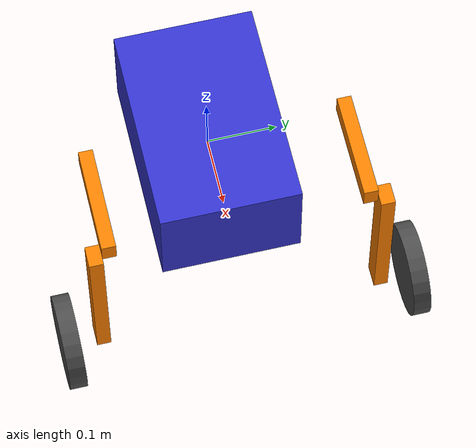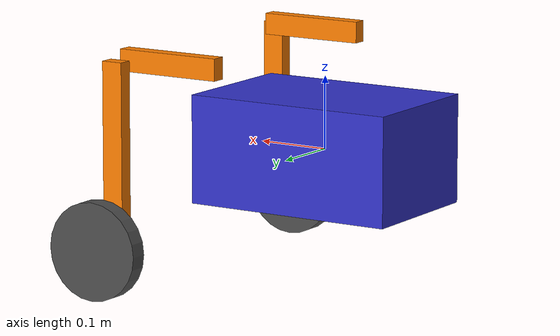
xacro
<?xml version="1.0" encoding="utf-8"?>
<robot name="wheel_legged_robot_base" xmlns:xacro="http://www.ros.org/wiki/xacro">

  <!-- 基于原始URDF的简化版本，适配Gazebo -->

  <link name="base_link">
    <inertial>
      <origin xyz="-0.0076 0.0067 0.123056" rpy="0 0 0" />
      <mass value="8.8" />
      <inertia ixx="0.326092" ixy="3.6E-05" ixz="-0.00115" iyy="0.229526" iyz="0.006798" izz="0.220537" />
    </inertial>
    <visual>
      <origin xyz="0 0 0" rpy="0 0 0" />
      <geometry>
        <box size="0.3 0.2 0.15"/>
      </geometry>
      <material name="blue">
        <color rgba="0.2 0.2 0.8 1" />
      </material>
    </visual>
    <collision>
      <origin xyz="0 0 0" rpy="0 0 0" />
      <geometry>
        <box size="0.3 0.2 0.15"/>
      </geometry>
    </collision>
  </link>

  <!-- 左前腿第一关节 -->
  <link name="lf0_Link">
    <inertial>
      <origin xyz="0.05976637 -0.00048182 0.01198236" rpy="0 0 0" />
      <mass value="0.16" />
      <inertia ixx="0.00006424" ixy="0.00000030" ixz="0.00012472" iyy="0.00116066" iyz="-0.00000101" izz="0.00117029" />
    </inertial>
    <visual>
      <origin xyz="0.075 0 0.01" rpy="0 0 0" />
      <geometry>
        <box size="0.15 0.03 0.02"/>
      </geometry>
      <material name="orange">
        <color rgba="1 0.5 0 1" />
      </material>
    </visual>
    <collision>
      <origin xyz="0.075 0 0.01" rpy="0 0 0" />
      <geometry>
        <box size="0.15 0.03 0.02"/>
      </geometry>
    </collision>
  </link>

  <joint name="lf0_Joint" type="revolute">
    <origin xyz="0.054 0.1705 0.131" rpy="-1.5708 0 0" />
    <parent link="base_link" />
    <child link="lf0_Link" />
    <axis xyz="0 0 1" />
    <dynamics damping="0.1" friction="0.1"/>
    <limit lower="-0.3363" upper="1.3479" effort="30" velocity="10" />
  </joint>

  <!-- 左前腿第二关节 -->
  <link name="lf1_Link">
    <inertial>
      <origin xyz="-0.00032544 0.15899848 0.00798168" rpy="0 0 0" />
      <mass value="0.36" />
      <inertia ixx="0.01248770" ixy="-0.00000383" ixz="-0.00000106" iyy="0.00011869" iyz="0.00042404" izz="0.01251325" />
    </inertial>
    <visual>
      <origin xyz="0 0.125 0.01" rpy="0 0 0" />
      <geometry>
        <box size="0.03 0.25 0.02"/>
      </geometry>
      <material name="orange">
        <color rgba="1 0.5 0 1" />
      </material>
    </visual>
    <collision>
      <origin xyz="0 0.125 0.01" rpy="0 0 0" />
      <geometry>
        <box size="0.03 0.25 0.02"/>
      </geometry>
    </collision>
  </link>

  <joint name="lf1_Joint" type="revolute">
    <origin xyz="0.15 -0.00010199 0.0205" rpy="0 0 0" />
    <parent link="lf0_Link" />
    <child link="lf1_Link" />
    <axis xyz="0 0 1" />
    <dynamics damping="0.1" friction="0.1"/>
    <limit lower="-1.0" upper="1.25" effort="30" velocity="10" />
  </joint>

  <!-- 左轮 -->
  <link name="l_wheel_Link">
    <inertial>
      <origin xyz="-0.00004507 -0.00038447 0.02376028" rpy="0 0 0" />
      <mass value="1.22" />
      <inertia ixx="0.00174370" ixy="-0.00000195" ixz="-0.00000028" iyy="0.00176013" iyz="-0.00000241" izz="0.00173973" />
    </inertial>
    <visual>
      <origin xyz="0 0 0.03" rpy="0 0 0" />
      <geometry>
        <cylinder length="0.025" radius="0.0675"/>
      </geometry>
      <material name="dark_grey">
        <color rgba="0.3 0.3 0.3 1" />
      </material>
    </visual>
    <collision>
      <origin xyz="0 0 0.03" rpy="0 0 0" />
      <geometry>
        <cylinder length="0.025" radius="0.0675"/>
      </geometry>
    </collision>
  </link>

  <joint name="l_wheel_Joint" type="continuous">
    <origin xyz="1.857E-05 0.25 0.0275" rpy="0 0 0" />
    <parent link="lf1_Link" />
    <child link="l_wheel_Link" />
    <axis xyz="0 0 1" />
    <dynamics damping="0.1" friction="0.1"/>
    <limit effort="5" velocity="10" />
  </joint>

  <!-- 右前腿第一关节 -->
  <link name="rf0_Link">
    <inertial>
      <origin xyz="0.05976637 -0.00048182 0.01198236" rpy="0 0 0" />
      <mass value="0.16" />
      <inertia ixx="0.00006424" ixy="0.00000174" ixz="0.00012472" iyy="0.00116066" iyz="-0.00000084" izz="0.00117029" />
    </inertial>
    <visual>
      <origin xyz="0.075 0 0.01" rpy="0 0 0" />
      <geometry>
        <box size="0.15 0.03 0.02"/>
      </geometry>
      <material name="orange">
        <color rgba="1 0.5 0 1" />
      </material>
    </visual>
    <collision>
      <origin xyz="0.075 0 0.01" rpy="0 0 0" />
      <geometry>
        <box size="0.15 0.03 0.02"/>
      </geometry>
    </collision>
  </link>

  <joint name="rf0_Joint" type="revolute">
    <origin xyz="0.054 -0.1705 0.131" rpy="1.5708 0 0" />
    <parent link="base_link" />
    <child link="rf0_Link" />
    <axis xyz="0 0 1" />
    <dynamics damping="0.1" friction="0.1"/>
    <limit lower="-1.3479" upper="0.3363" effort="30" velocity="10" />
  </joint>

  <!-- 右前腿第二关节 -->
  <link name="rf1_Link">
    <inertial>
      <origin xyz="0.00032544 -0.15899848 0.00798168" rpy="0 0 0" />
      <mass value="0.36" />
      <inertia ixx="0.01248770" ixy="-0.00000553" ixz="0.00000112" iyy="0.00011869" iyz="-0.00042404" izz="0.01251325" />
    </inertial>
    <visual>
      <origin xyz="0 -0.125 0.01" rpy="0 0 0" />
      <geometry>
        <box size="0.03 0.25 0.02"/>
      </geometry>
      <material name="orange">
        <color rgba="1 0.5 0 1" />
      </material>
    </visual>
    <collision>
      <origin xyz="0 -0.125 0.01" rpy="0 0 0" />
      <geometry>
        <box size="0.03 0.25 0.02"/>
      </geometry>
    </collision>
  </link>

  <joint name="rf1_Joint" type="revolute">
    <origin xyz="0.15 9.5536E-05 0.0205" rpy="0 0 0" />
    <parent link="rf0_Link" />
    <child link="rf1_Link" />
    <axis xyz="0 0 1" />
    <dynamics damping="0.1" friction="0.1"/>
    <limit lower="-1.25" upper="1.0" effort="30" velocity="10" />
  </joint>

  <!-- 右轮 -->
  <link name="r_wheel_Link">
    <inertial>
      <origin xyz="0.00038403 0.00004865 0.02376028" rpy="0 0 0" />
      <mass value="1.22" />
      <inertia ixx="0.00176009" ixy="-0.00000211" ixz="0.00000241" iyy="0.00174374" iyz="0.00000031" izz="0.00173973" />
    </inertial>
    <visual>
      <origin xyz="0 0 0.03" rpy="0 0 0" />
      <geometry>
        <cylinder length="0.025" radius="0.0675"/>
      </geometry>
      <material name="dark_grey">
        <color rgba="0.3 0.3 0.3 1" />
      </material>
    </visual>
    <collision>
      <origin xyz="0 0 0.03" rpy="0 0 0" />
      <geometry>
        <cylinder length="0.025" radius="0.0675"/>
      </geometry>
    </collision>
  </link>

  <joint name="r_wheel_Joint" type="continuous">
    <origin xyz="1.5909E-05 -0.25 0.0275" rpy="0 0 0" />
    <parent link="rf1_Link" />
    <child link="r_wheel_Link" />
    <axis xyz="0 0 1" />
    <dynamics damping="0.1" friction="0.1"/>
    <limit effort="5" velocity="10" />
  </joint>

</robot>
